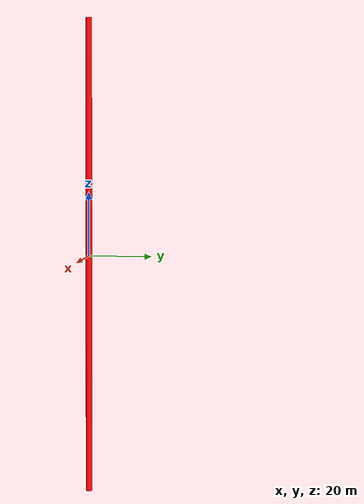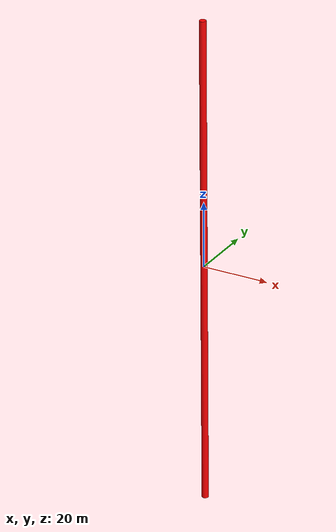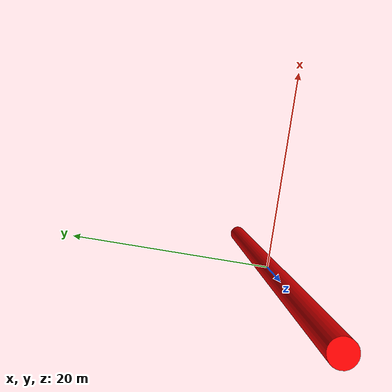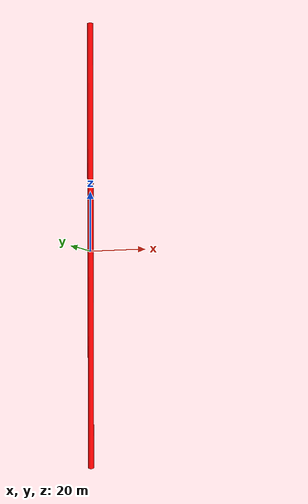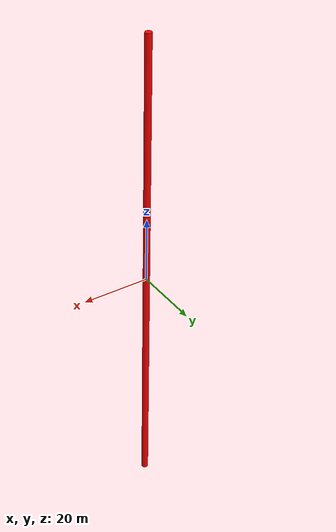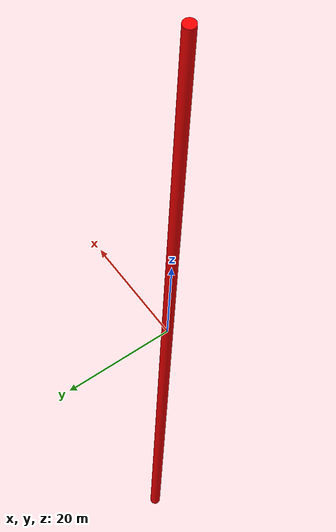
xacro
<?xml version="1.0" encoding="utf-8"?>
<robot xmlns:xacro="http://www.ros.org/wiki/xacro" name="cylinder">

  <xacro:arg name="radius" default="1" />
  <xacro:arg name="height" default="150" />

  <xacro:property name="r" value="$(arg radius)" />
  <xacro:property name="h" value="$(arg height)" />

  <!-- Used for fixing robot to Gazebo 'base_link' -->
  <link name="world"/>

  <joint name="world_fixed" type="fixed">
    <parent link="world"/>
    <child link="cylinder_link"/>
    <origin xyz="0 0 0" rpy="0 0 0"/>
  </joint>

  <link name="cylinder_link">
    <visual>
      <origin xyz="0 0 0" rpy="0 0 0"/>
      <geometry>
        <cylinder length="${h}" radius="${r}"/>
      </geometry>
      <material name="red">
        <color rgba="1 0 0 1"/>
      </material>
    </visual>
    <inertial>
      <origin xyz="0 0 0" rpy="0 0 0"/>
      <mass value="100.0"/>
      <inertia ixx="1"  ixy="0"  ixz="0" iyy="1" iyz="0" izz="1" />
    </inertial>
    <collision>
      <origin xyz="0 0 0" rpy="0 0 0"/>
      <geometry>
        <cylinder length="${h}" radius="${r}"/>
      </geometry>
    </collision>
    <self_collide>true</self_collide>
    <kinematic>0</kinematic>
  </link>

</robot>
